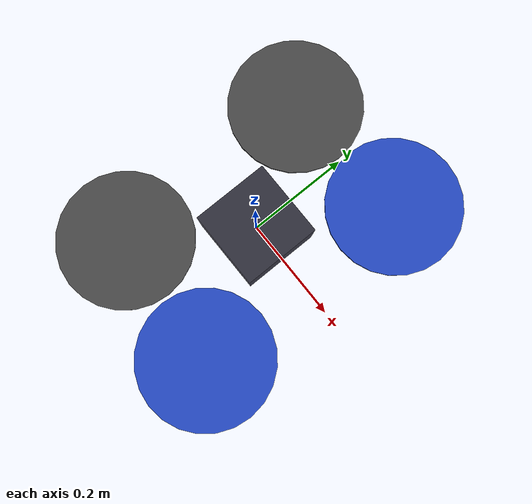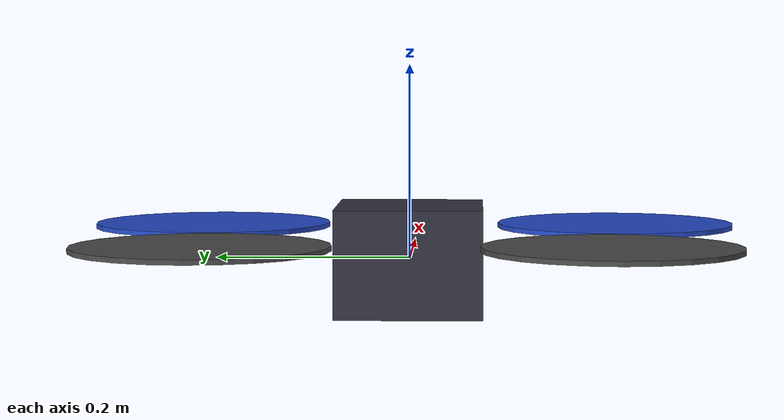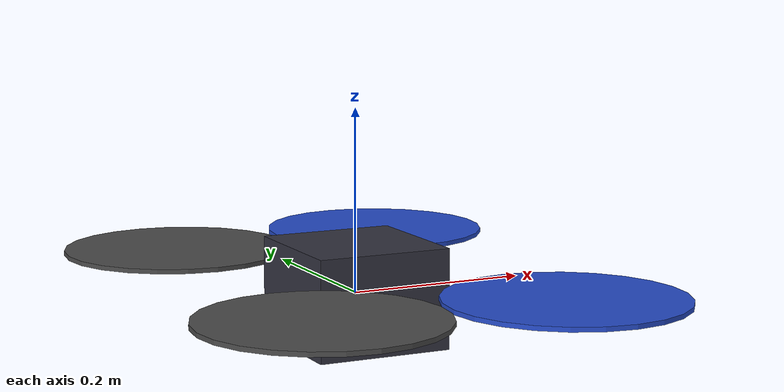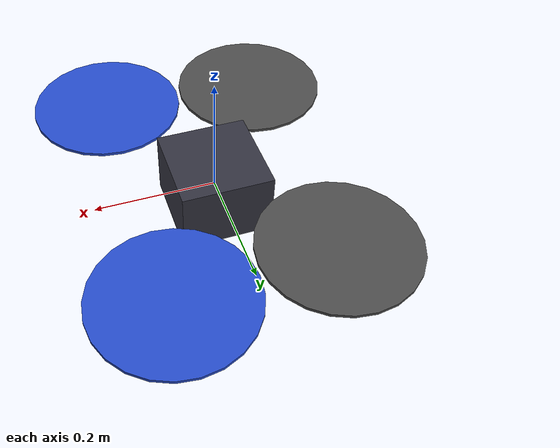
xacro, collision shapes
<?xml version="1.0"?>
<robot name="stm32_drone" xmlns:xacro="http://www.ros.org/wiki/xacro">

  <!-- Base Link -->
  <link name="base_link">
    <visual>
      <origin xyz="0 0 0" rpy="0 0 0"/>
      <geometry>
        <mesh filename="package://stm32_drone_control/meshes/iris.stl" scale="1 1 1"/>
      </geometry>
      <material name="dark_gray">
        <color rgba="0.2 0.2 0.25 1.0"/>
      </material>
    </visual>

    <collision>
      <origin xyz="0 0 0" rpy="0 0 0"/>
      <geometry>
        <box size="0.15 0.15 0.11"/>
      </geometry>
    </collision>

    <inertial>
      <mass value="1.5"/>
      <origin xyz="0 0 0" rpy="0 0 0"/>
      <inertia ixx="0.015" ixy="0.0" ixz="0.0" iyy="0.015" iyz="0.0" izz="0.025"/>
    </inertial>
  </link>

  <!-- ROTOR 0 -->
  <link name="rotor_0">
    <inertial>
      <origin xyz="0 0 0" rpy="0 0 0"/>
      <mass value="0.005"/>
      <inertia ixx="9.75e-07" ixy="0" ixz="0" iyy="0.000273104" iyz="0" izz="0.000274004"/>
    </inertial>
    <visual>
      <origin xyz="0 0 0" rpy="1.5708 0 0"/>
      <geometry>
        <mesh filename="package://stm32_drone_control/meshes/iris_prop_ccw.dae" scale="1 1 1"/>
      </geometry>
    </visual>
    <collision>
      <origin xyz="0 0 0" rpy="0 0 0"/>
      <geometry>
        <cylinder length="0.005" radius="0.128"/>
      </geometry>
    </collision>
  </link>

  <joint name="rotor_0_joint" type="continuous">
    <origin xyz="0.13 -0.22 0.023" rpy="0 0 0"/>
    <parent link="base_link"/>
    <child link="rotor_0"/>
    <axis xyz="0 0 1"/>
    <limit effort="100" velocity="100"/>
  </joint>

  <gazebo reference="rotor_0">
    <material>Gazebo/Blue</material>
  </gazebo>

  <!-- ROTOR 1 -->
  <link name="rotor_1">
    <inertial>
      <origin xyz="0 0 0" rpy="0 0 0"/>
      <mass value="0.005"/>
      <inertia ixx="9.75e-07" ixy="0" ixz="0" iyy="0.000273104" iyz="0" izz="0.000274004"/>
    </inertial>
    <visual>
      <origin xyz="0 0 0" rpy="1.5708 0 0"/>
      <geometry>
        <mesh filename="package://stm32_drone_control/meshes/iris_prop_ccw.dae" scale="1 1 1"/>
      </geometry>
    </visual>
    <collision>
      <origin xyz="0 0 0" rpy="0 0 0"/>
      <geometry>
        <cylinder length="0.005" radius="0.128"/>
      </geometry>
    </collision>
  </link>

  <joint name="rotor_1_joint" type="continuous">
    <origin xyz="-0.13 0.2 0.023" rpy="0 0 0"/>
    <parent link="base_link"/>
    <child link="rotor_1"/>
    <axis xyz="0 0 1"/>
    <limit effort="100" velocity="100"/>
  </joint>

  <gazebo reference="rotor_1">
    <material>Gazebo/DarkGrey</material>
  </gazebo>

  <!-- ROTOR 2 -->
  <link name="rotor_2">
    <inertial>
      <origin xyz="0 0 0" rpy="0 0 0"/>
      <mass value="0.005"/>
      <inertia ixx="9.75e-07" ixy="0" ixz="0" iyy="0.000273104" iyz="0" izz="0.000274004"/>
    </inertial>
    <visual>
      <origin xyz="0 0 0" rpy="1.5708 0 0"/>
      <geometry>
        <mesh filename="package://stm32_drone_control/meshes/iris_prop_cw.dae" scale="1 1 1"/>
      </geometry>
    </visual>
    <collision>
      <origin xyz="0 0 0" rpy="0 0 0"/>
      <geometry>
        <cylinder length="0.005" radius="0.128"/>
      </geometry>
    </collision>
  </link>

  <joint name="rotor_2_joint" type="continuous">
    <origin xyz="0.13 0.22 0.023" rpy="0 0 0"/>
    <parent link="base_link"/>
    <child link="rotor_2"/>
    <axis xyz="0 0 1"/>
    <limit effort="100" velocity="100"/>
  </joint>

  <gazebo reference="rotor_2">
    <material>Gazebo/Blue</material>
  </gazebo>

  <!-- ROTOR 3 -->
  <link name="rotor_3">
    <inertial>
      <origin xyz="0 0 0" rpy="0 0 0"/>
      <mass value="0.005"/>
      <inertia ixx="9.75e-07" ixy="0" ixz="0" iyy="0.000273104" iyz="0" izz="0.000274004"/>
    </inertial>
    <visual>
      <origin xyz="0 0 0" rpy="1.5708 0 0"/>
      <geometry>
        <mesh filename="package://stm32_drone_control/meshes/iris_prop_cw.dae" scale="1 1 1"/>
      </geometry>
    </visual>
    <collision>
      <origin xyz="0 0 0" rpy="0 0 0"/>
      <geometry>
        <cylinder length="0.005" radius="0.128"/>
      </geometry>
    </collision>
  </link>

  <joint name="rotor_3_joint" type="continuous">
    <origin xyz="-0.13 -0.2 0.023" rpy="0 0 0"/>
    <parent link="base_link"/>
    <child link="rotor_3"/>
    <axis xyz="0 0 1"/>
    <limit effort="100" velocity="100"/>
  </joint>

  <gazebo reference="rotor_3">
    <material>Gazebo/DarkGrey</material>
  </gazebo>

  <!-- IMU Sensor Link -->
  <joint name="imu_joint" type="fixed">
    <parent link="base_link"/>
    <child link="imu_link"/>
    <origin xyz="0 0 0.02" rpy="0 0 0"/>
  </joint>

  <link name="imu_link"/>

  <!-- Gazebo Ayarları -->
  <gazebo>
    <static>false</static>
  </gazebo>

  <gazebo reference="base_link">
    <visual>
      <material>
        <ambient>0.2 0.2 0.25 1</ambient>
        <diffuse>0.3 0.3 0.35 1</diffuse>
      </material>
    </visual>
  </gazebo>

  <gazebo reference="imu_link">
    <sensor name="imu_sensor" type="imu">
      <always_on>1</always_on>
      <update_rate>100</update_rate>
      <visualize>true</visualize>
      <topic>imu/sim_data</topic>
    </sensor>
  </gazebo>

  <!-- Multicopter Aerodinamik Eklentileri -->
  <gazebo>
    <plugin filename="libgz-sim-multicopter-motor-model-system.so" name="gz::sim::systems::MulticopterMotorModel">
      <robotNamespace>stm32_drone</robotNamespace>
      <jointName>rotor_0_joint</jointName>
      <linkName>rotor_0</linkName>
      <turningDirection>ccw</turningDirection>
      <timeConstantUp>0.0125</timeConstantUp>
      <timeConstantDown>0.025</timeConstantDown>
      <maxRotVelocity>1000.0</maxRotVelocity>
      <motorConstant>8.54858e-06</motorConstant>
      <momentConstant>0.06</momentConstant>
      <commandSubTopic>command/motor_speed</commandSubTopic>
      <motorNumber>0</motorNumber>
      <rotorDragCoefficient>8.06428e-05</rotorDragCoefficient>
      <rollingMomentCoefficient>1e-06</rollingMomentCoefficient>
      <rotorVelocitySlowdownSim>10</rotorVelocitySlowdownSim>
      <motorType>velocity</motorType>
    </plugin>

    <plugin filename="libgz-sim-multicopter-motor-model-system.so" name="gz::sim::systems::MulticopterMotorModel">
      <robotNamespace>stm32_drone</robotNamespace>
      <jointName>rotor_1_joint</jointName>
      <linkName>rotor_1</linkName>
      <turningDirection>ccw</turningDirection>
      <timeConstantUp>0.0125</timeConstantUp>
      <timeConstantDown>0.025</timeConstantDown>
      <maxRotVelocity>1000.0</maxRotVelocity>
      <motorConstant>8.54858e-06</motorConstant>
      <momentConstant>0.06</momentConstant>
      <commandSubTopic>command/motor_speed</commandSubTopic>
      <motorNumber>1</motorNumber>
      <rotorDragCoefficient>8.06428e-05</rotorDragCoefficient>
      <rollingMomentCoefficient>1e-06</rollingMomentCoefficient>
      <rotorVelocitySlowdownSim>10</rotorVelocitySlowdownSim>
      <motorType>velocity</motorType>
    </plugin>

    <plugin filename="libgz-sim-multicopter-motor-model-system.so" name="gz::sim::systems::MulticopterMotorModel">
      <robotNamespace>stm32_drone</robotNamespace>
      <jointName>rotor_2_joint</jointName>
      <linkName>rotor_2</linkName>
      <turningDirection>cw</turningDirection>
      <timeConstantUp>0.0125</timeConstantUp>
      <timeConstantDown>0.025</timeConstantDown>
      <maxRotVelocity>1000.0</maxRotVelocity>
      <motorConstant>8.54858e-06</motorConstant>
      <momentConstant>0.06</momentConstant>
      <commandSubTopic>command/motor_speed</commandSubTopic>
      <motorNumber>2</motorNumber>
      <rotorDragCoefficient>8.06428e-05</rotorDragCoefficient>
      <rollingMomentCoefficient>1e-06</rollingMomentCoefficient>
      <rotorVelocitySlowdownSim>10</rotorVelocitySlowdownSim>
      <motorType>velocity</motorType>
    </plugin>

    <plugin filename="libgz-sim-multicopter-motor-model-system.so" name="gz::sim::systems::MulticopterMotorModel">
      <robotNamespace>stm32_drone</robotNamespace>
      <jointName>rotor_3_joint</jointName>
      <linkName>rotor_3</linkName>
      <turningDirection>cw</turningDirection>
      <timeConstantUp>0.0125</timeConstantUp>
      <timeConstantDown>0.025</timeConstantDown>
      <maxRotVelocity>1000.0</maxRotVelocity>
      <motorConstant>8.54858e-06</motorConstant>
      <momentConstant>0.06</momentConstant>
      <commandSubTopic>command/motor_speed</commandSubTopic>
      <motorNumber>3</motorNumber>
      <rotorDragCoefficient>8.06428e-05</rotorDragCoefficient>
      <rollingMomentCoefficient>1e-06</rollingMomentCoefficient>
      <rotorVelocitySlowdownSim>10</rotorVelocitySlowdownSim>
      <motorType>velocity</motorType>
    </plugin>
  </gazebo>

</robot>
